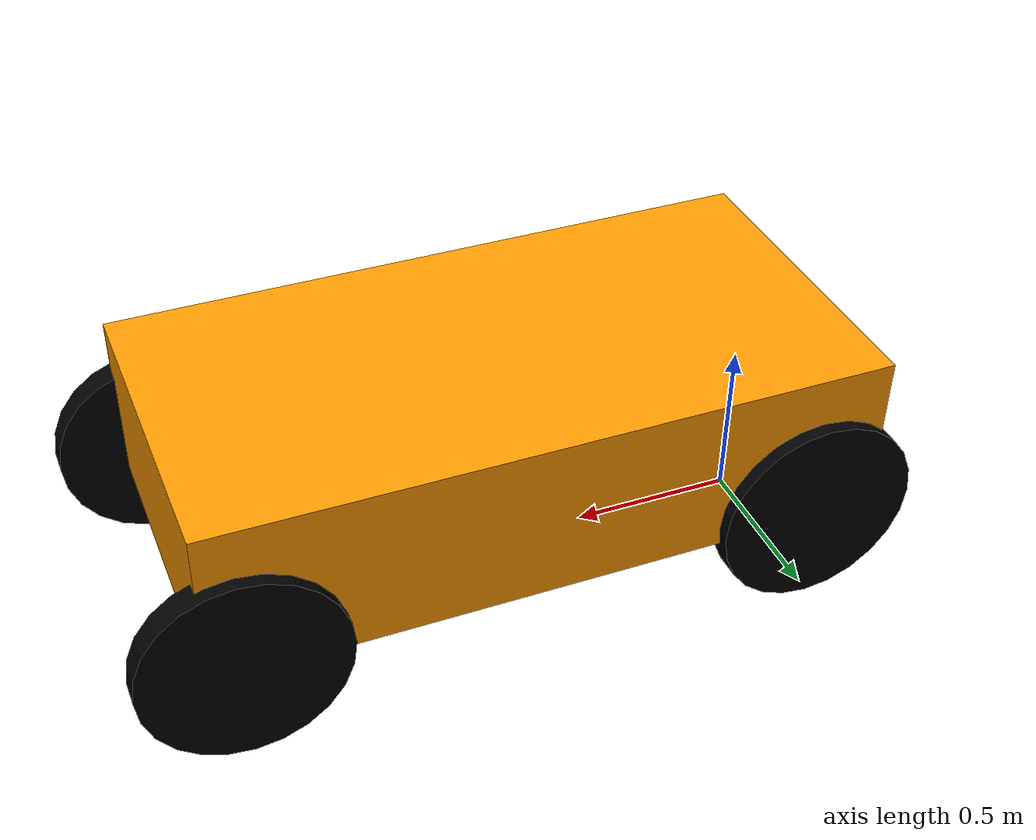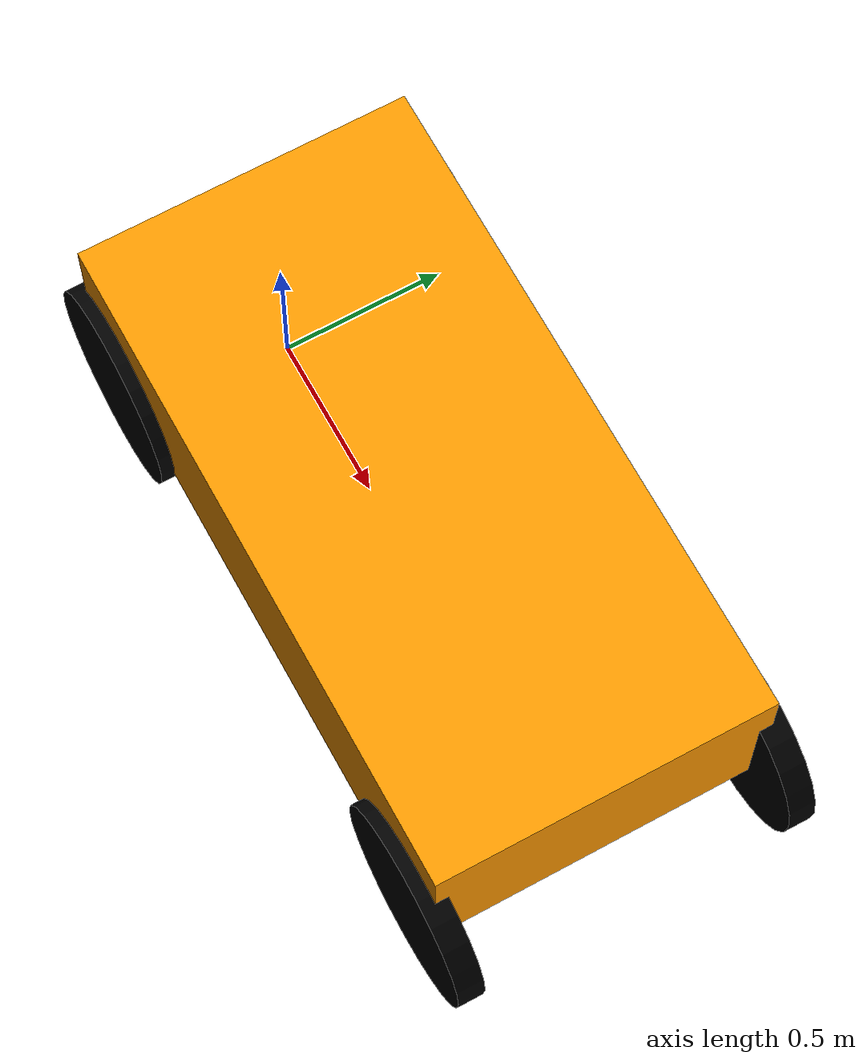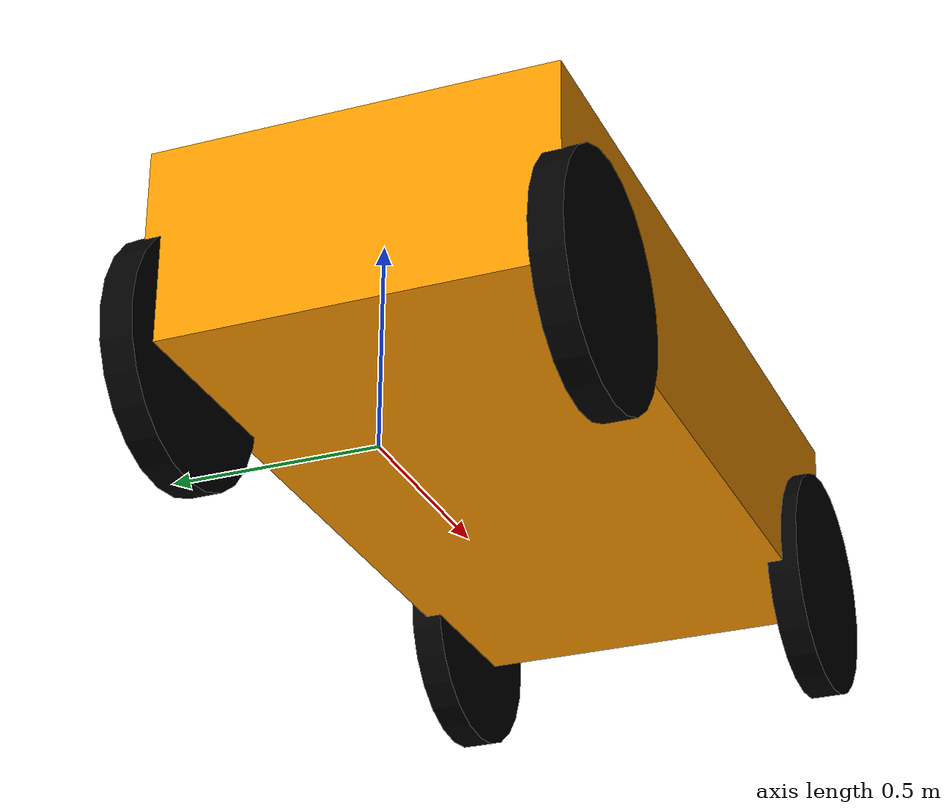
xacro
<?xml version="1.0"?>
<robot name="ackermann_drive" xmlns:xacro="http://ros.org/wiki/xacro">
  <material name="Black">
    <color rgba="0 0 0 1" />
  </material>
  <material name="Grey">
    <color rgba="0.8 0.8 0.8 1" />
  </material>
  <material name="Orange">
    <color rgba="1 0.6 0 1" />
  </material>
  <material name="White">
    <color rgba="1 1 1 1" />
  </material>

  <link name="base_link" />

  <!-- Chassis -->
  <link name="chassis">
    <collision>
      <origin xyz="0 0 0" rpy="0 0 0" />
      <geometry>
        <box size="2 1 0.5" />
      </geometry>
    </collision>

    <visual>
      <origin xyz="0 0 0" rpy="0 0 0" />
      <geometry>
        <box size="2 1 0.5" />
      </geometry>
      <material name="Orange" />
    </visual>

    <inertial>
      <origin xyz="0 0 0" rpy="0 0 0" />
      <mass value="100" />
      <inertia ixx="10.4" ixy="0.0" ixz="0.0" iyy="35.4" iyz="0.0" izz="41.66" />
    </inertial>
  </link>

  <joint name="chassis_joint" type="fixed">
    <origin xyz="0.8 0 0.5" rpy="0 0 0" />
    <parent link="base_link" />
    <child link="chassis" />
  </joint>

  <!-- rear left wheel Link -->
  <link name="rear_left_wheel">
    <collision>
      <geometry>
        <cylinder length="0.08" radius="0.3" />
      </geometry>
    </collision>
    <visual>
      <geometry>
        <cylinder length="0.08" radius="0.3" />
      </geometry>
      <material name="Black" />
    </visual>

    <inertial>
      <mass value="11.3" />
      <inertia ixx="0.26" ixy="0.0" ixz="0.0" iyy="0.26" iyz="0.0" izz="0.51" />
    </inertial>
  </link>

  <joint name="rear_left_wheel_joint" type="continuous">
    <origin xyz="-0.8 0.5 -0.2" rpy="-1.57 0 0" />
    <parent link="chassis" />
    <child link="rear_left_wheel" />
    <axis xyz="0 0 1" />
    <dynamics damping="0.2" />
  </joint>

  <!-- rear right wheel Link -->
  <link name="rear_right_wheel">
    <collision>
      <geometry>
        <cylinder length="0.08" radius="0.3" />
      </geometry>
    </collision>
    <visual>
      <geometry>
        <cylinder length="0.08" radius="0.3" />
      </geometry>
      <material name="Black" />
    </visual>
    <inertial>
      <mass value="11.3" />
      <inertia ixx="0.26" ixy="0.0" ixz="0.0" iyy="0.26" iyz="0.0" izz="0.51" />
    </inertial>
  </link>

  <joint name="rear_right_wheel_joint" type="continuous">
    <origin xyz="-0.8 -0.5 -0.2" rpy="-1.57 0 0" />
    <parent link="chassis" />
    <child link="rear_right_wheel" />
    <axis xyz="0 0 1" />
    <dynamics damping="0.2" />
  </joint>

  <!-- left steer Link -->
  <link name="left_wheel_steering">
    <inertial>
      <mass value="0.1"/>
      <inertia ixx="0" ixy="0.0" ixz="0.0" iyy="0.0" iyz="0.0" izz="0.0" />
    </inertial>
  </link>

  <joint name="left_wheel_steering_joint" type="revolute">
    <origin xyz="0.9 0.5 -0.2" rpy="0 0 0" />
    <parent link="chassis" />
    <child link="left_wheel_steering" />
    <axis xyz="0 0 1" />
    <dynamics damping="0.2" />
    <limit effort="1000.0" lower="-1.57" upper="1.57" velocity="30"/>
  </joint>

  <!-- right steer Link -->
  <link name="right_wheel_steering">
    <inertial>
      <mass value="0.1"/>
      <inertia ixx="0" ixy="0.0" ixz="0.0" iyy="0.0" iyz="0.0" izz="0.0" />
    </inertial>
  </link>

  <joint name="right_wheel_steering_joint" type="revolute">
    <origin xyz="0.9 -0.5 -0.2" rpy="0 0 0" />
    <parent link="chassis" />
    <child link="right_wheel_steering" />
    <axis xyz="0 0 1" />
    <dynamics damping="0.2" />
    <limit effort="1000.0" lower="-1.57" upper="1.57" velocity="30"/>
  </joint>

  <!-- front left wheel Link -->
  <link name="front_left_wheel">
    <collision>
      <geometry>
        <cylinder length="0.08" radius="0.3" />
      </geometry>
    </collision>
    <visual>
      <geometry>
        <cylinder length="0.08" radius="0.3" />
      </geometry>
      <material name="Black" />
    </visual>
    <inertial>
      <mass value="11.3" />
      <inertia ixx="0.26" ixy="0.0" ixz="0.0" iyy="0.26" iyz="0.0" izz="0.51" />
    </inertial>
  </link>

  <joint name="front_left_wheel_joint" type="continuous">
    <origin xyz="0 0 0" rpy="-1.57 0 0" />
    <parent link="left_wheel_steering" />
    <child link="front_left_wheel" />
    <axis xyz="0 0 1" />
    <dynamics damping="0.2" />
  </joint>

  <!-- front right wheel Link -->
  <link name="front_right_wheel">
    <collision>
      <geometry>
        <cylinder length="0.08" radius="0.3" />
      </geometry>
    </collision>
    <visual>
      <geometry>
        <cylinder length="0.08" radius="0.3" />
      </geometry>
      <material name="Black" />
    </visual>
    <inertial>
      <mass value="11.3" />
      <inertia ixx="0.26" ixy="0.0" ixz="0.0" iyy="0.26" iyz="0.0" izz="0.51" />
    </inertial>
  </link>

  <joint name="front_right_wheel_joint" type="continuous">
    <origin xyz="0 0 0" rpy="-1.57 0 0" />
    <parent link="right_wheel_steering" />
    <child link="front_right_wheel" />
    <axis xyz="0 0 1" />
    <dynamics damping="0.2" />
  </joint>

  <ros2_control name="GazeboSimSystem" type="system">
    <hardware>
      <plugin>gz_ros2_control/GazeboSimSystem</plugin>
    </hardware>
    <joint name="rear_left_wheel_joint">
      <command_interface name="velocity" />
      <state_interface name="velocity" />
      <state_interface name="position" />
    </joint>
    <joint name="rear_right_wheel_joint">
      <command_interface name="velocity" />
      <state_interface name="velocity" />
      <state_interface name="position" />
    </joint>
    <joint name="left_wheel_steering_joint">
      <command_interface name="position" />
      <state_interface name="position" />
    </joint>
    <joint name="right_wheel_steering_joint">
      <command_interface name="position" />
      <state_interface name="position" />
    </joint>
  </ros2_control>

  <gazebo>
    <plugin filename="gz_ros2_control-system" name="gz_ros2_control::GazeboSimROS2ControlPlugin">
      <parameters>$(find gz_ros2_control_demos)/config/ackermann_drive_controller.yaml</parameters>
    </plugin>
  </gazebo>

</robot>
